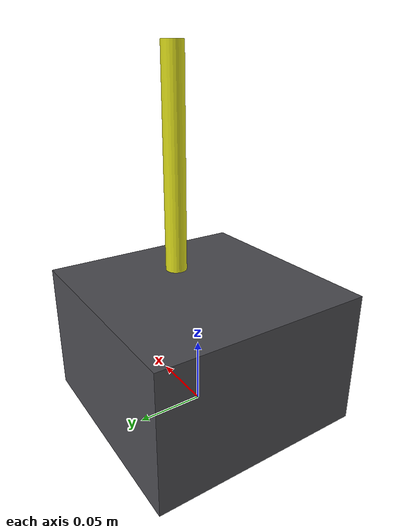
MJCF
<?xml version="1.0" encoding="utf-8"?>
<mujoco model="tab_welding_station">
  <compiler angle="radian" autolimits="true"/>
  <default>
    <default class="body"><geom contype="1" conaffinity="1"/></default>
  </default>
  <worldbody>
    <body name="base">
      <geom type="box" size="0.08 0.08 0.05" pos="0 0 0.05" rgba="0.3 0.3 0.32 1" class="body"/>
      <geom type="box" size="0.024 0.004 0.0125" pos="-0.04 -0.07200000000000001 0.07500000000000001" rgba="0.9 0.7 0.1 1" class="body"/>
      <body name="welding_electrode" pos="0.03 0 0.18">
        <joint name="welding_electrode_joint" type="hinge" axis="1 0 0" range="-1.0 0" damping="0.5" frictionloss="0.5"/>
  <geom type="cylinder" size="0.008 0.08" pos="0 0 0" rgba="0.85 0.85 0.1 1" class="body"/>
      </body>
    </body>
  </worldbody>
</mujoco>
